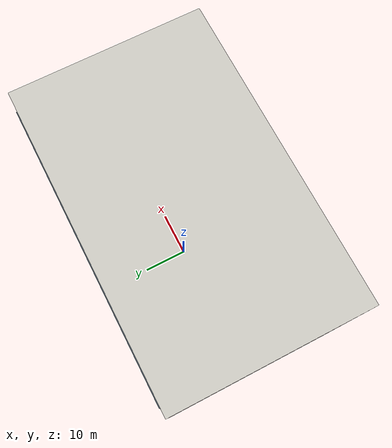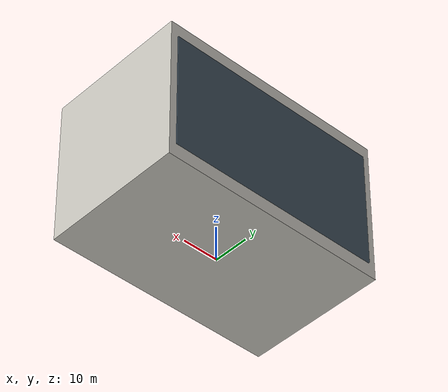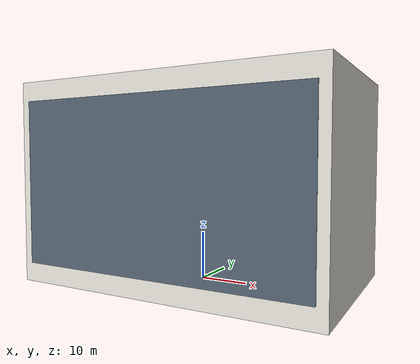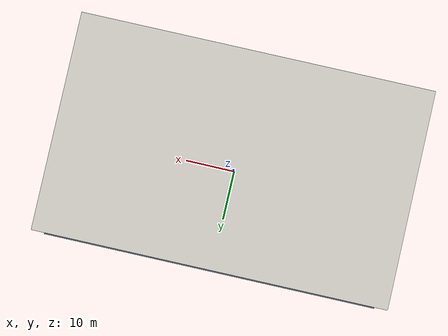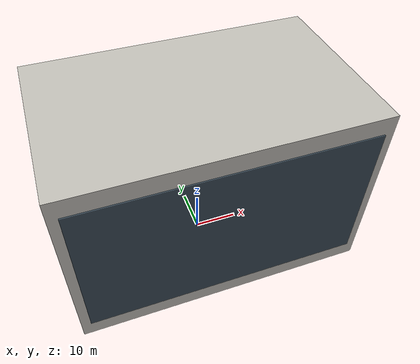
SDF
<?xml version="1.0" ?>
<sdf version="1.8">
  <model name="nikko_garden_block_north">
    <static>true</static>
    <link name="garden_link">
      <collision name="col"><pose>0 0 21.0 0 0 0</pose><geometry><box><size>65.0 40.0 42.0</size></box></geometry></collision>
      <visual name="main_vis"><pose>0 0 21.0 0 0 0</pose><geometry><box><size>65.0 40.0 42.0</size></box></geometry><material><ambient>0.74 0.73 0.70 1</ambient><diffuse>0.80 0.79 0.76 1</diffuse></material></visual>
      <visual name="balconies"><pose>0 0 21.0 0 0 0</pose><geometry><box><size>61.0 40.6 34.0</size></box></geometry><material><ambient>0.20 0.25 0.30 0.88</ambient><diffuse>0.25 0.32 0.38 0.88</diffuse></material></visual>
    </link>
  </model>
</sdf>
